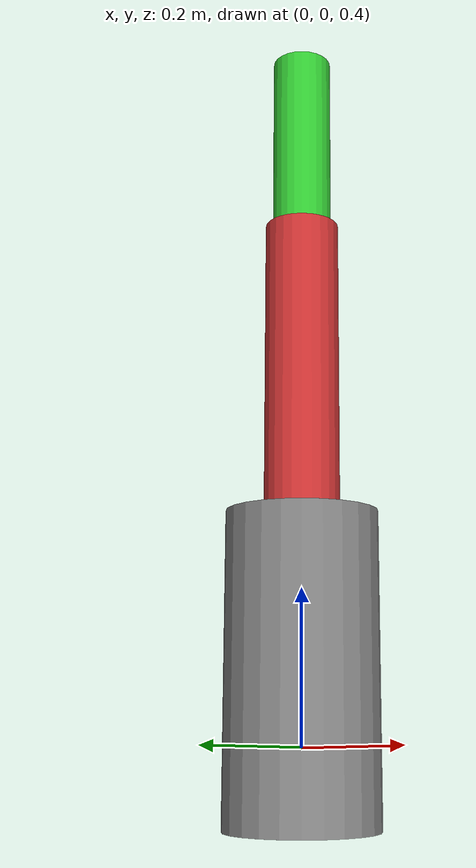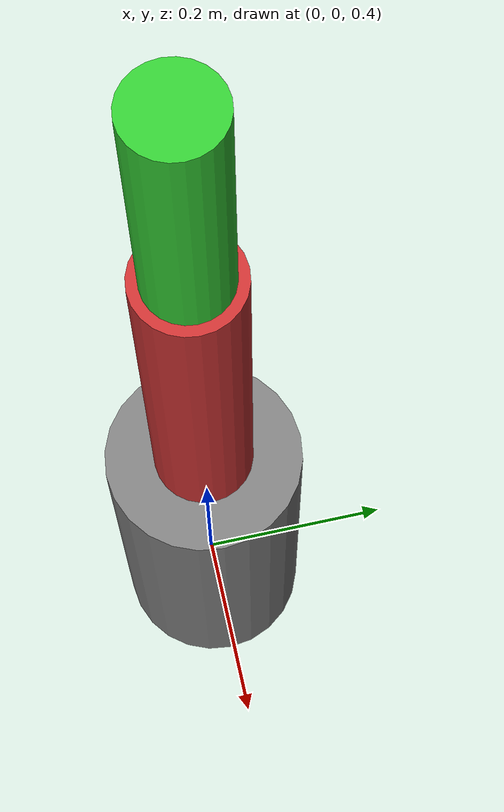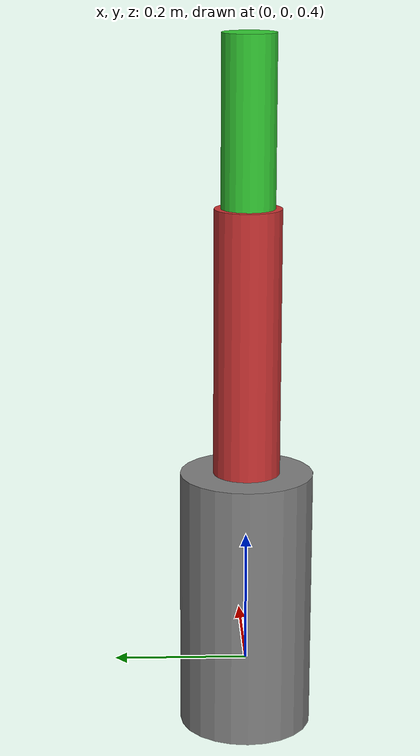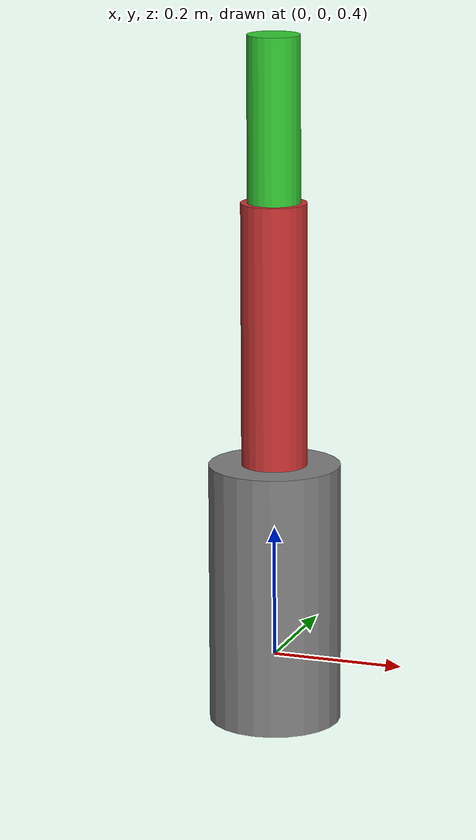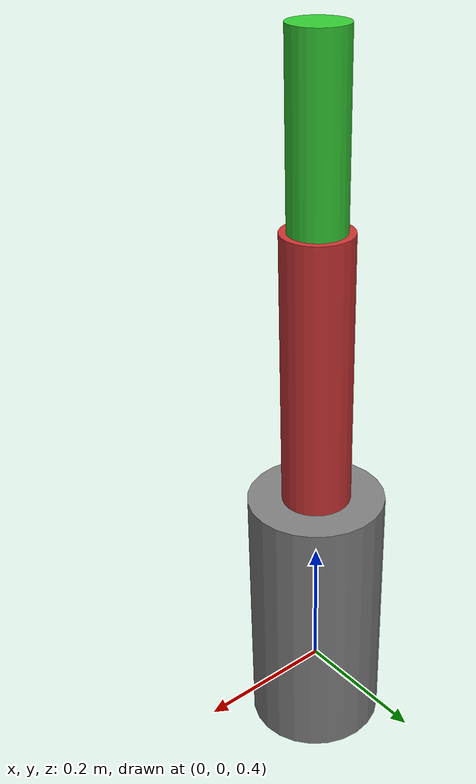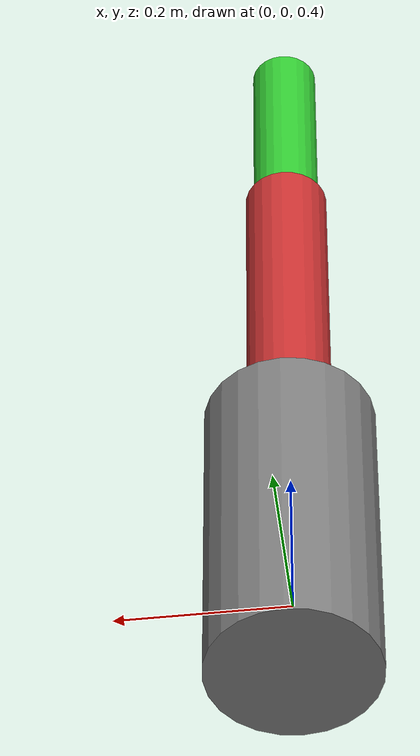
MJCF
<?xml version="1.0"?>
<!-- Simple tendon-driven arm example -->
<mujoco model="tendon_arm">
  <option timestep="0.002" gravity="0 0 -9.81"/>

  <worldbody>
    <!-- Base -->
    <body name="base" pos="0 0 0.5">
      <geom type="cylinder" size="0.1 0.2" rgba="0.5 0.5 0.5 1"/>

      <!-- Upper arm -->
      <body name="upper_arm" pos="0 0 0.3">
        <joint name="shoulder" type="hinge" axis="0 1 0" range="-3.14 3.14"/>
        <geom type="cylinder" size="0.05 0.3" rgba="0.8 0.2 0.2 1"/>

        <!-- Lower arm -->
        <body name="lower_arm" pos="0 0 0.3">
          <joint name="elbow" type="hinge" axis="0 1 0" range="-3.14 3.14"/>
          <geom type="cylinder" size="0.04 0.25" rgba="0.2 0.8 0.2 1"/>
        </body>
      </body>
    </body>
  </worldbody>

  <!-- Tendon system -->
  <tendon>
    <spatial name="tendon_1">
      <site name="attachment_1" body="base" pos="0 0 0.2"/>
      <site name="attachment_2" body="lower_arm" pos="0 0 0.2"/>
    </spatial>
  </tendon>

  <actuator>
    <motor name="shoulder_motor" joint="shoulder" gear="1.0"/>
    <motor name="elbow_motor" joint="elbow" gear="1.0"/>
  </actuator>
</mujoco>
